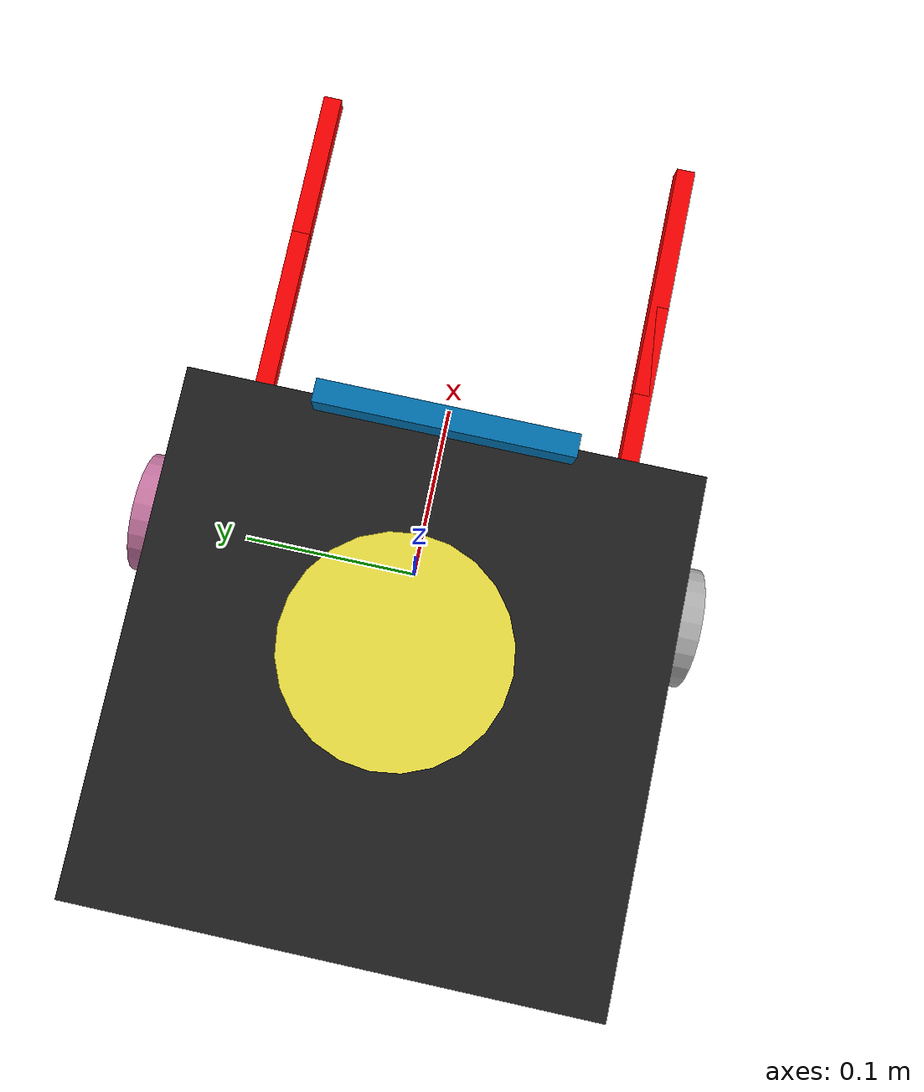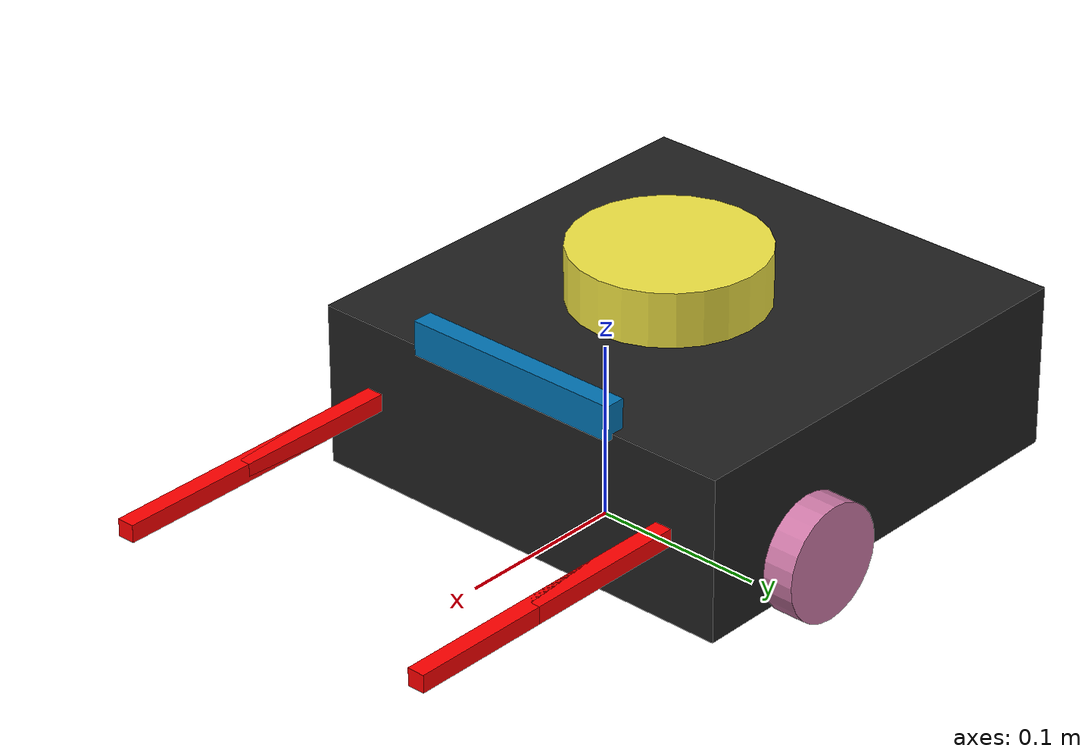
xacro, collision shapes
<?xml version="1.0" ?>
<robot name="turtlebot3_waffle" xmlns:xacro="http://ros.org/wiki/xacro">
  <xacro:include filename="$(find turtlebot3_description)/urdf/common_properties.xacro"/>
  <xacro:include filename="$(find turtlebot3_description)/urdf/turtlebot3_waffle.gazebo.xacro"/>

  <xacro:property name="r200_cam_rgb_px" value="0.005"/>
  <xacro:property name="r200_cam_rgb_py" value="0.018"/>
  <xacro:property name="r200_cam_rgb_pz" value="0.013"/>
  <xacro:property name="r200_cam_depth_offset" value="0.01"/>

  <link name="base_footprint"/>

  <joint name="base_joint" type="fixed">
    <parent link="base_footprint"/>
    <child link="base_link" />
    <origin xyz="0 0 0.010" rpy="0 0 0"/>
  </joint>

  <link name="base_link">
    <visual>
      <origin xyz="-0.064 0 0.0" rpy="0 0 0"/>
      <geometry>
        <mesh filename="package://turtlebot3_description/meshes/bases/waffle_base.stl" scale="0.001 0.001 0.001"/>
      </geometry>
      <material name="light_black"/>
    </visual>

    <collision>
      <origin xyz="-0.064 0 0.047" rpy="0 0 0"/>
      <geometry>
        <box size="0.266 0.266 0.094"/>
      </geometry>
    </collision>

    <inertial>
      <origin xyz="0 0 0" rpy="0 0 0"/>
      <mass value="1.3729096e+00"/>
      <inertia ixx="8.7002718e-03" ixy="-4.7576583e-05" ixz="1.1160499e-04"
               iyy="8.6195418e-03" iyz="-3.5422299e-06"
               izz="1.4612727e-02" />
    </inertial>
  </link>

<!--   Add new arms  -->
<!--   https://github.com/moeinpeyman/ROS_turtlebot3_OpenCV  -->

 <joint name="ball_keeper_L" type="fixed">
    <parent link="base_link"/>
    <child link="ball_keeper_link_L"/>
    <origin xyz="0.1 0.1 0.01" rpy="0 0 0"/>
  </joint>

  <link name="ball_keeper_link_L">
    <collision>
      <origin xyz="0 0 0.04" rpy="0 0 0"/>
      <geometry>
        <box size="0.13 0.01 0.01"/>
      </geometry>
    </collision>

    <visual>
      <origin xyz="0 0 0.04" rpy="0 0 0"/>
      <geometry>
        <box size="0.15 0.01 0.01"/>
      </geometry>
      <material name="orange"/>
    </visual>

    <inertial>
      <origin xyz="0 0 3" rpy="0 0 0"/>
      <mass value="0.0008"/>
      <inertia
        ixx="1.0" ixy="0.0" ixz="0.0"
        iyy="1.0" iyz="0.0"
        izz="1.0"/>
    </inertial>
  </link>

 <joint name="ball_keeper_R" type="fixed">
    <parent link="base_link"/>
    <child link="ball_keeper_link_R"/>
    <origin xyz="0.1 -0.1 0.01" rpy="0 0 0"/>
  </joint>

  <link name="ball_keeper_link_R">
    <collision>
      <origin xyz="0 0 0.04" rpy="0 0 0"/>
      <geometry>
        <box size="0.13 0.01 0.01"/>
      </geometry>
    </collision>

    <visual>
      <origin xyz="0 0 0.04" rpy="0 0 0"/>
      <geometry>
        <box size="0.15 0.01 0.01"/>
      </geometry>
      <material name="orange">
		<color rgba="1 0 0 1.0"/>
      </material>
    </visual>

    <inertial>
      <origin xyz="0 0 3" rpy="0 0 0"/>
      <mass value="0.0008"/>
      <inertia
        ixx="1.0" ixy="0.0" ixz="0.0"
        iyy="1.0" iyz="0.0"
        izz="1.0"/>
    </inertial>
  </link>

 <joint name="ball_keeper_gate_L" type="fixed">
    <parent link="base_link"/>
    <child link="ball_keeper_gate_link_L"/>
    <origin xyz="0.18 0.1 0.01" rpy="0 0 0"/>
  </joint>

  <link name="ball_keeper_gate_link_L">
    <collision>
      <origin xyz="0 0 0.04" rpy="0 0 0"/>
      <geometry>
        <box size="0.13 0.01 0.01"/>
      </geometry>
    </collision>

    <visual>
      <origin xyz="0 0 0.04" rpy="0 0 0"/>
      <geometry>
        <box size="0.01 0.05 0.01"/>
      </geometry>
      <material name="orange"/>
    </visual>

    <inertial>
      <origin xyz="0 0 3" rpy="0 0 0"/>
      <mass value="0.0001"/>
      <inertia
        ixx="1.0" ixy="0.0" ixz="0.0"
        iyy="1.0" iyz="0.0"
        izz="1.0"/>
    </inertial>
  </link>

  <joint name="ball_keeper_gate_R" type="fixed">
    <parent link="base_link"/>
    <child link="ball_keeper_gate_link_R"/>
    <origin xyz="0.18 -0.1 0.01" rpy="0 0 0"/>
  </joint>

  <link name="ball_keeper_gate_link_R">
    <collision>
      <origin xyz="0 0 0.04" rpy="0 0 0"/>
      <geometry>
        <box size="0.13 0.01 0.01"/>
      </geometry>
    </collision>

    <visual>
      <origin xyz="0 0 0.04" rpy="0 0 0"/>
      <geometry>
        <box size="0.01 0.05 0.01"/>
      </geometry>
      <material name="orange"/>
    </visual>

    <inertial>
      <origin xyz="0 0 3" rpy="0 0 0"/>
      <mass value="0.0001"/>
      <inertia
        ixx="1.0" ixy="0.0" ixz="0.0"
        iyy="1.0" iyz="0.0"
        izz="1.0"/>
    </inertial>
  </link>

<!--   Add new arms  -->

  <joint name="wheel_left_joint" type="continuous">
    <parent link="base_link"/>
    <child link="wheel_left_link"/>
    <origin xyz="0.0 0.144 0.023" rpy="-1.57 0 0"/>
    <axis xyz="0 0 1"/>
  </joint>

  <link name="wheel_left_link">
    <visual>
      <origin xyz="0 0 0" rpy="1.57 0 0"/>
      <geometry>
        <mesh filename="package://turtlebot3_description/meshes/wheels/left_tire.stl" scale="0.001 0.001 0.001"/>
      </geometry>
      <material name="dark"/>
    </visual>

    <collision>
      <origin xyz="0 0 0" rpy="0 0 0"/>
      <geometry>
        <cylinder length="0.018" radius="0.033"/>
      </geometry>
    </collision>

    <inertial>
      <origin xyz="0 0 0" />
      <mass value="2.8498940e-02" />
      <inertia ixx="1.1175580e-05" ixy="-4.2369783e-11" ixz="-5.9381719e-09"
               iyy="1.1192413e-05" iyz="-1.4400107e-11"
               izz="2.0712558e-05" />
      </inertial>
  </link>

  <joint name="wheel_right_joint" type="continuous">
    <parent link="base_link"/>
    <child link="wheel_right_link"/>
    <origin xyz="0.0 -0.144 0.023" rpy="-1.57 0 0"/>
    <axis xyz="0 0 1"/>
  </joint>

  <link name="wheel_right_link">
    <visual>
      <origin xyz="0 0 0" rpy="1.57 0 0"/>
      <geometry>
        <mesh filename="package://turtlebot3_description/meshes/wheels/right_tire.stl" scale="0.001 0.001 0.001"/>
      </geometry>
      <material name="dark"/>
    </visual>

    <collision>
      <origin xyz="0 0 0" rpy="0 0 0"/>
      <geometry>
        <cylinder length="0.018" radius="0.033"/>
      </geometry>
    </collision>

    <inertial>
      <origin xyz="0 0 0" />
      <mass value="2.8498940e-02" />
      <inertia ixx="1.1175580e-05" ixy="-4.2369783e-11" ixz="-5.9381719e-09"
               iyy="1.1192413e-05" iyz="-1.4400107e-11"
               izz="2.0712558e-05" />
      </inertial>
  </link>

  <joint name="caster_back_right_joint" type="fixed">
    <parent link="base_link"/>
    <child link="caster_back_right_link"/>
    <origin xyz="-0.177 -0.064 -0.004" rpy="-1.57 0 0"/>
  </joint>

  <link name="caster_back_right_link">
    <collision>
      <origin xyz="0 0.001 0" rpy="0 0 0"/>
      <geometry>
        <box size="0.030 0.009 0.020"/>
      </geometry>
    </collision>

    <inertial>
      <origin xyz="0 0 0" />
      <mass value="0.005" />
      <inertia ixx="0.001" ixy="0.0" ixz="0.0"
               iyy="0.001" iyz="0.0"
               izz="0.001" />
    </inertial>
  </link>

  <joint name="caster_back_left_joint" type="fixed">
    <parent link="base_link"/>
    <child link="caster_back_left_link"/>
    <origin xyz="-0.177 0.064 -0.004" rpy="-1.57 0 0"/>
  </joint>

  <link name="caster_back_left_link">
    <collision>
      <origin xyz="0 0.001 0" rpy="0 0 0"/>
      <geometry>
        <box size="0.030 0.009 0.020"/>
      </geometry>
    </collision>

    <inertial>
      <origin xyz="0 0 0" />
      <mass value="0.005" />
      <inertia ixx="0.001" ixy="0.0" ixz="0.0"
               iyy="0.001" iyz="0.0"
               izz="0.001" />
    </inertial>
  </link>

  <joint name="imu_joint" type="fixed">
    <parent link="base_link"/>
    <child link="imu_link"/>
    <origin xyz="0.0 0 0.068" rpy="0 0 0"/>
  </joint>

  <link name="imu_link"/>

  <joint name="scan_joint" type="fixed">
    <parent link="base_link"/>
    <child link="base_scan"/>
    <origin xyz="-0.064 0 0.122" rpy="0 0 0"/>
  </joint>

  <link name="base_scan">
    <visual>
      <origin xyz="0 0 0" rpy="0 0 0"/>
      <geometry>
        <mesh filename="package://turtlebot3_description/meshes/sensors/lds.stl" scale="0.001 0.001 0.001"/>
      </geometry>
      <material name="dark"/>
    </visual>

    <collision>
      <origin xyz="0.015 0 -0.0065" rpy="0 0 0"/>
      <geometry>
        <cylinder length="0.0315" radius="0.055"/>
      </geometry>
    </collision>

    <inertial>
      <mass value="0.114" />
      <origin xyz="0 0 0" />
      <inertia ixx="0.001" ixy="0.0" ixz="0.0"
               iyy="0.001" iyz="0.0"
               izz="0.001" />
    </inertial>
  </link>

  <joint name="camera_joint" type="fixed">
    <origin xyz="0.064 -0.065 0.094" rpy="0 0 0"/>
    <parent link="base_link"/>
    <child link="camera_link"/>
  </joint>

  <link name="camera_link">
    <visual>
     <origin xyz="0 0 0" rpy="1.57 0 1.57"/>
      <geometry>
       <mesh filename="package://turtlebot3_description/meshes/sensors/r200.dae" />
      </geometry>
    </visual>
    <collision>
      <origin xyz="0.003 0.065 0.007" rpy="0 0 0"/>
      <geometry>
        <box size="0.012 0.132 0.020"/>
      </geometry>
    </collision>

    <!-- This inertial field needs doesn't contain reliable data!! -->
  </link>

  <joint name="camera_rgb_joint" type="fixed">
    <origin xyz="${r200_cam_rgb_px} ${r200_cam_rgb_py} ${r200_cam_rgb_pz}" rpy="0 0 0"/>
    <parent link="camera_link"/>
    <child link="camera_rgb_frame"/>
  </joint>
  <link name="camera_rgb_frame"/>

  <joint name="camera_rgb_optical_joint" type="fixed">
    <origin xyz="0 0 0" rpy="-1.57 0 -1.57"/>
    <parent link="camera_rgb_frame"/>
    <child link="camera_rgb_optical_frame"/>
  </joint>
  <link name="camera_rgb_optical_frame"/>

  <joint name="camera_depth_joint" type="fixed">
    <origin xyz="${r200_cam_rgb_px} ${r200_cam_rgb_py + r200_cam_depth_offset} ${r200_cam_rgb_pz}" rpy="0 0 0"/>
    <parent link="camera_link"/>
    <child link="camera_depth_frame"/>
  </joint>
  <link name="camera_depth_frame"/>

  <joint name="camera_depth_optical_joint" type="fixed">
    <origin xyz="0 0 0" rpy="-1.57 0 -1.57"/>
    <parent link="camera_depth_frame"/>
    <child link="camera_depth_optical_frame"/>
  </joint>
  <link name="camera_depth_optical_frame"/>

</robot>
